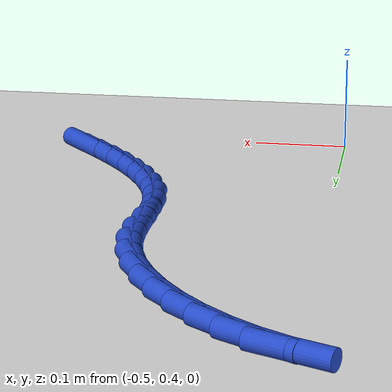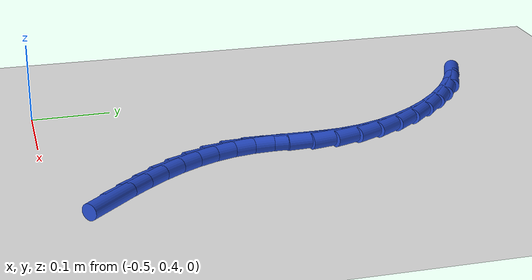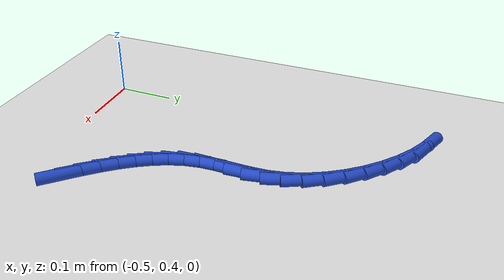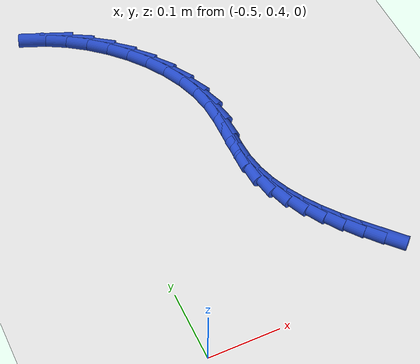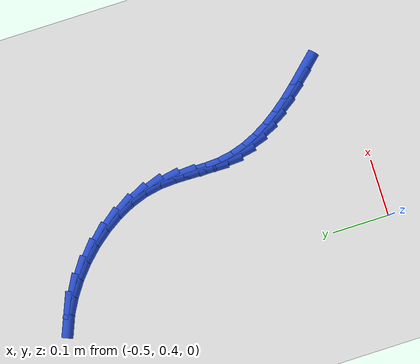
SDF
<sdf version="1.6">
 <world name="default">
  <model name="ground_plane">
   <static>1</static>
   <link name="link">
    <collision name="collision">
     <geometry><plane><normal>0 0 1</normal><size>100 100</size></plane></geometry>
     <surface><friction><ode><mu>100</mu><mu2>50</mu2></ode></friction></surface>
    </collision>
    <visual name="visual">
     <cast_shadows>0</cast_shadows>
     <geometry><plane><normal>0 0 1</normal><size>100 100</size></plane></geometry>
     <material>
      <script><uri>file://media/materials/scripts/gazebo.material</uri><name>Gazebo/WhiteGlow</name></script>
     </material>
    </visual>
   </link>
  </model>
  <model name="line">
   <link name="link_19">
    <pose>-0.2204485637084863 0.466857055571644 0.01 0 1.57 -0.8231546030872825</pose>
    <collision name="collision">
     <geometry><cylinder><radius>0.01</radius><length>0.08</length></cylinder></geometry>
    </collision>
    <visual name="visual">
     <material>
      <script><name>Gazebo/Blue</name><uri>file://media/materials/scripts/gazebo.material</uri></script>
     </material>
     <geometry><cylinder><radius>0.01</radius><length>0.08</length></cylinder></geometry>
    </visual>
   </link>
   <link name="link_20">
    <pose>-0.24005236858569914 0.4880000458259015 0.01 0 1.57 -0.8602357040350318</pose>
    <collision name="collision">
     <geometry><cylinder><radius>0.01</radius><length>0.08</length></cylinder></geometry>
    </collision>
    <visual name="visual">
     <material>
      <script><name>Gazebo/Blue</name><uri>file://media/materials/scripts/gazebo.material</uri></script>
     </material>
     <geometry><cylinder><radius>0.01</radius><length>0.08</length></cylinder></geometry>
    </visual>
   </link>
   <link name="link_21">
    <pose>-0.25848790285270895 0.5094241595393786 0.01 0 1.57 -0.9105856234175619</pose>
    <collision name="collision">
     <geometry><cylinder><radius>0.01</radius><length>0.08</length></cylinder></geometry>
    </collision>
    <visual name="visual">
     <material>
      <script><name>Gazebo/Blue</name><uri>file://media/materials/scripts/gazebo.material</uri></script>
     </material>
     <geometry><cylinder><radius>0.01</radius><length>0.08</length></cylinder></geometry>
    </visual>
   </link>
   <link name="link_22">
    <pose>-0.2754265007733465 0.531239807238413 0.01 0 1.57 -0.9755514953426091</pose>
    <collision name="collision">
     <geometry><cylinder><radius>0.01</radius><length>0.08</length></cylinder></geometry>
    </collision>
    <visual name="visual">
     <material>
      <script><name>Gazebo/Blue</name><uri>file://media/materials/scripts/gazebo.material</uri></script>
     </material>
     <geometry><cylinder><radius>0.01</radius><length>0.08</length></cylinder></geometry>
    </visual>
   </link>
   <link name="link_23">
    <pose>-0.290539496611443 0.5535573994493432 0.01 0 1.57 -1.0564004418718724</pose>
    <collision name="collision">
     <geometry><cylinder><radius>0.01</radius><length>0.08</length></cylinder></geometry>
    </collision>
    <visual name="visual">
     <material>
      <script><name>Gazebo/Blue</name><uri>file://media/materials/scripts/gazebo.material</uri></script>
     </material>
     <geometry><cylinder><radius>0.01</radius><length>0.08</length></cylinder></geometry>
    </visual>
   </link>
   <link name="link_24">
    <pose>-0.3034982246308293 0.5764873466985071 0.01 0 1.57 -1.1538621455678169</pose>
    <collision name="collision">
     <geometry><cylinder><radius>0.01</radius><length>0.08</length></cylinder></geometry>
    </collision>
    <visual name="visual">
     <material>
      <script><name>Gazebo/Blue</name><uri>file://media/materials/scripts/gazebo.material</uri></script>
     </material>
     <geometry><cylinder><radius>0.01</radius><length>0.08</length></cylinder></geometry>
    </visual>
   </link>
   <link name="link_25">
    <pose>-0.31397401909533607 0.6001400595122424 0.01 0 1.57 -1.2674518433417834</pose>
    <collision name="collision">
     <geometry><cylinder><radius>0.01</radius><length>0.08</length></cylinder></geometry>
    </collision>
    <visual name="visual">
     <material>
      <script><name>Gazebo/Blue</name><uri>file://media/materials/scripts/gazebo.material</uri></script>
     </material>
     <geometry><cylinder><radius>0.01</radius><length>0.08</length></cylinder></geometry>
    </visual>
   </link>
   <link name="link_26">
    <pose>-0.3216382142687949 0.6246259484168879 0.01 0 1.57 -1.3947372178408934</pose>
    <collision name="collision">
     <geometry><cylinder><radius>0.01</radius><length>0.08</length></cylinder></geometry>
    </collision>
    <visual name="visual">
     <material>
      <script><name>Gazebo/Blue</name><uri>file://media/materials/scripts/gazebo.material</uri></script>
     </material>
     <geometry><cylinder><radius>0.01</radius><length>0.08</length></cylinder></geometry>
    </visual>
   </link>
   <link name="link_27">
    <pose>-0.326162144415036 0.6500554239387806 0.01 0 1.57 -1.5211517138171886</pose>
    <collision name="collision">
     <geometry><cylinder><radius>0.01</radius><length>0.08</length></cylinder></geometry>
    </collision>
    <visual name="visual">
     <material>
      <script><name>Gazebo/Blue</name><uri>file://media/materials/scripts/gazebo.material</uri></script>
     </material>
     <geometry><cylinder><radius>0.01</radius><length>0.08</length></cylinder></geometry>
    </visual>
   </link>
   <link name="link_28">
    <pose>-0.32747609507731223 0.6765008116111341 0.01 0 1.57 1.5525218159534144</pose>
    <collision name="collision">
     <geometry><cylinder><radius>0.01</radius><length>0.08</length></cylinder></geometry>
    </collision>
    <visual name="visual">
     <material>
      <script><name>Gazebo/Blue</name><uri>file://media/materials/scripts/gazebo.material</uri></script>
     </material>
     <geometry><cylinder><radius>0.01</radius><length>0.08</length></cylinder></geometry>
    </visual>
   </link>
   <link name="link_29">
    <pose>-0.3269768173885187 0.7038187580486174 0.01 0 1.57 1.556492656625533</pose>
    <collision name="collision">
     <geometry><cylinder><radius>0.01</radius><length>0.08</length></cylinder></geometry>
    </collision>
    <visual name="visual">
     <material>
      <script><name>Gazebo/Blue</name><uri>file://media/materials/scripts/gazebo.material</uri></script>
     </material>
     <geometry><cylinder><radius>0.01</radius><length>0.08</length></cylinder></geometry>
    </visual>
   </link>
   <link name="link_30">
    <pose>-0.3265766976322833 0.7317900733563658 0.01 0 1.57 -1.5141076287134394</pose>
    <collision name="collision">
     <geometry><cylinder><radius>0.01</radius><length>0.08</length></cylinder></geometry>
    </collision>
    <visual name="visual">
     <material>
      <script><name>Gazebo/Blue</name><uri>file://media/materials/scripts/gazebo.material</uri></script>
     </material>
     <geometry><cylinder><radius>0.01</radius><length>0.08</length></cylinder></geometry>
    </visual>
   </link>
   <link name="link_31">
    <pose>-0.3281886905237016 0.76019548403804 0.01 0 1.57 -1.3827110717498414</pose>
    <collision name="collision">
     <geometry><cylinder><radius>0.01</radius><length>0.08</length></cylinder></geometry>
    </collision>
    <visual name="visual">
     <material>
      <script><name>Gazebo/Blue</name><uri>file://media/materials/scripts/gazebo.material</uri></script>
     </material>
     <geometry><cylinder><radius>0.01</radius><length>0.08</length></cylinder></geometry>
    </visual>
   </link>
   <link name="link_32">
    <pose>-0.3336345044622485 0.7888072155773351 0.01 0 1.57 -1.2391757874583416</pose>
    <collision name="collision">
     <geometry><cylinder><radius>0.01</radius><length>0.08</length></cylinder></geometry>
    </collision>
    <visual name="visual">
     <material>
      <script><name>Gazebo/Blue</name><uri>file://media/materials/scripts/gazebo.material</uri></script>
     </material>
     <geometry><cylinder><radius>0.01</radius><length>0.08</length></cylinder></geometry>
    </visual>
   </link>
   <link name="link_33">
    <pose>-0.3434375314384174 0.8172765349990724 0.01 0 1.57 -1.113672842559572</pose>
    <collision name="collision">
     <geometry><cylinder><radius>0.01</radius><length>0.08</length></cylinder></geometry>
    </collision>
    <visual name="visual">
     <material>
      <script><name>Gazebo/Blue</name><uri>file://media/materials/scripts/gazebo.material</uri></script>
     </material>
     <geometry><cylinder><radius>0.01</radius><length>0.08</length></cylinder></geometry>
    </visual>
   </link>
   <link name="link_34">
    <pose>-0.35715491193405224 0.8451646879029725 0.01 0 1.57 -1.0022342994812339</pose>
    <collision name="collision">
     <geometry><cylinder><radius>0.01</radius><length>0.08</length></cylinder></geometry>
    </collision>
    <visual name="visual">
     <material>
      <script><name>Gazebo/Blue</name><uri>file://media/materials/scripts/gazebo.material</uri></script>
     </material>
     <geometry><cylinder><radius>0.01</radius><length>0.08</length></cylinder></geometry>
    </visual>
   </link>
   <link name="link_35">
    <pose>-0.3743207750932368 0.8720307760231042 0.01 0 1.57 -0.9002465234506688</pose>
    <collision name="collision">
     <geometry><cylinder><radius>0.01</radius><length>0.08</length></cylinder></geometry>
    </collision>
    <visual name="visual">
     <material>
      <script><name>Gazebo/Blue</name><uri>file://media/materials/scripts/gazebo.material</uri></script>
     </material>
     <geometry><cylinder><radius>0.01</radius><length>0.08</length></cylinder></geometry>
    </visual>
   </link>
   <link name="link_36">
    <pose>-0.3944692500600547 0.8974339010935373 0.01 0 1.57 -0.8034630720071869</pose>
    <collision name="collision">
     <geometry><cylinder><radius>0.01</radius><length>0.08</length></cylinder></geometry>
    </collision>
    <visual name="visual">
     <material>
      <script><name>Gazebo/Blue</name><uri>file://media/materials/scripts/gazebo.material</uri></script>
     </material>
     <geometry><cylinder><radius>0.01</radius><length>0.08</length></cylinder></geometry>
    </visual>
   </link>
   <link name="link_37">
    <pose>-0.41713446597858994 0.9209331648483418 0.01 0 1.57 -0.7079095050951352</pose>
    <collision name="collision">
     <geometry><cylinder><radius>0.01</radius><length>0.08</length></cylinder></geometry>
    </collision>
    <visual name="visual">
     <material>
      <script><name>Gazebo/Blue</name><uri>file://media/materials/scripts/gazebo.material</uri></script>
     </material>
     <geometry><cylinder><radius>0.01</radius><length>0.08</length></cylinder></geometry>
    </visual>
   </link>
   <link name="link_38">
    <pose>-0.4418505519929266 0.9420876690215872 0.01 0 1.57 -0.6096556347336491</pose>
    <collision name="collision">
     <geometry><cylinder><radius>0.01</radius><length>0.08</length></cylinder></geometry>
    </collision>
    <visual name="visual">
     <material>
      <script><name>Gazebo/Blue</name><uri>file://media/materials/scripts/gazebo.material</uri></script>
     </material>
     <geometry><cylinder><radius>0.01</radius><length>0.08</length></cylinder></geometry>
    </visual>
   </link>
   <link name="link_39">
    <pose>-0.46815163724714814 0.9604565153473433 0.01 0 1.57 -0.5045544071287962</pose>
    <collision name="collision">
     <geometry><cylinder><radius>0.01</radius><length>0.08</length></cylinder></geometry>
    </collision>
    <visual name="visual">
     <material>
      <script><name>Gazebo/Blue</name><uri>file://media/materials/scripts/gazebo.material</uri></script>
     </material>
     <geometry><cylinder><radius>0.01</radius><length>0.08</length></cylinder></geometry>
    </visual>
   </link>
   <link name="link_40">
    <pose>-0.49557185088533834 0.9755988055596796 0.01 0 1.57 -0.38802068075002644</pose>
    <collision name="collision">
     <geometry><cylinder><radius>0.01</radius><length>0.08</length></cylinder></geometry>
    </collision>
    <visual name="visual">
     <material>
      <script><name>Gazebo/Blue</name><uri>file://media/materials/scripts/gazebo.material</uri></script>
     </material>
     <geometry><cylinder><radius>0.01</radius><length>0.08</length></cylinder></geometry>
    </visual>
   </link>
  </model>
 </world>
</sdf>
